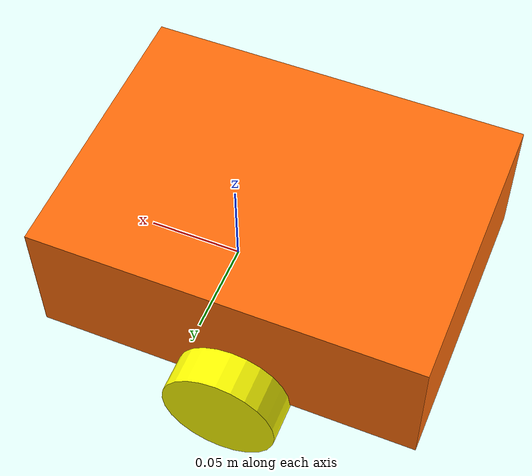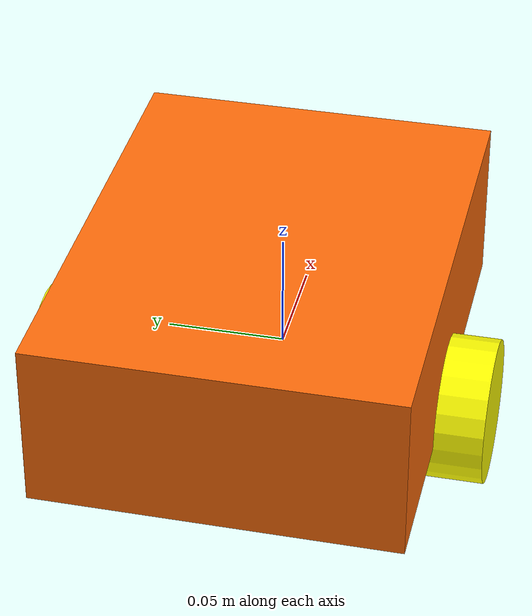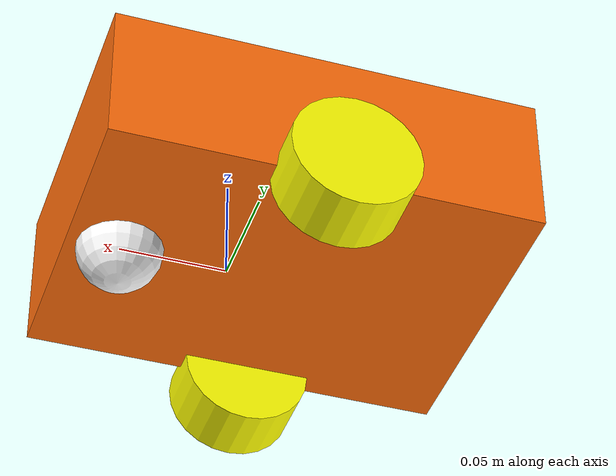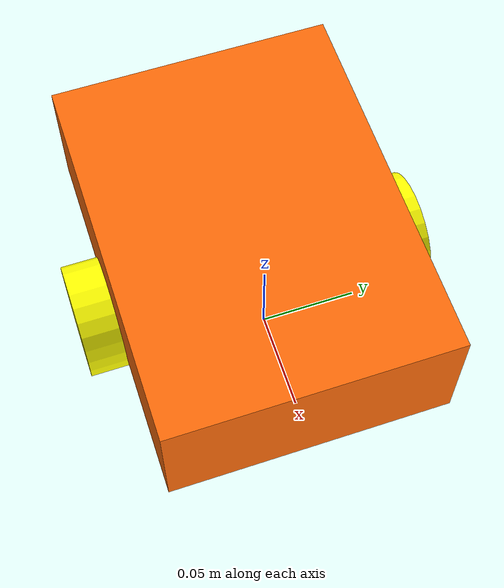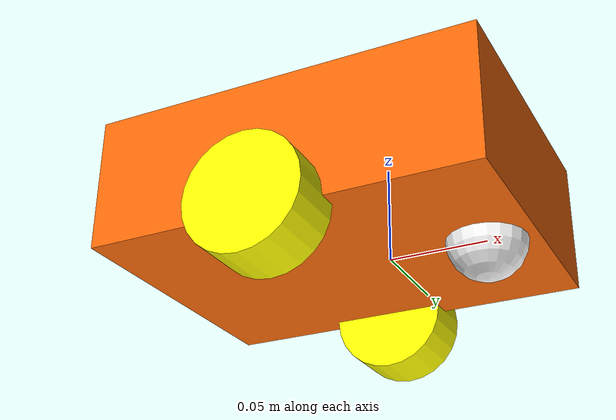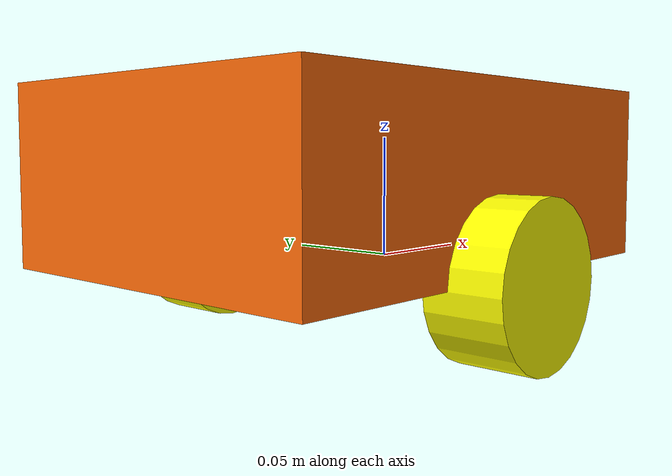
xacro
<?xml version="1.0"?>
<robot xmlns:xacro="http://www.ros.org/wiki/xacro">

<xacro:include filename="inertial_macros.xacro" />

    <!-- COLORS -->

   <material name="white">
    <color rgba="1 1 1 1"/>
</material>

<material name="orange">
     <color rgba="${255/255} ${108/255} ${10/255} 1.0"/>
</material>

<material name="blue">
    <color rgba="0.2 0.2 1 1"/>
</material>

<material name="black">
    <color rgba="0 0 0 1"/>
</material>

<material name="red">
    <color rgba="1 0 0 1"/>
</material>

  <material name="yellow">
      <color rgba="1 1 0 1"/>
    </material>

<!-- BASE LINK -->

<link name="base_link">
</link>

<!-- CHASSIS -->

<joint name="chassis_joint" type="fixed">
    <parent link="base_link"/>
    <child link="chassis"/>
    <origin xyz="-0.1 0 0"/>
</joint>

<link name="chassis">
    <visual>
        <origin xyz="0.075 0 0.035" rpy="0 0 0"/>
        <geometry>
            <box size="0.2 0.15 0.07"/>
        </geometry>
        <material name="orange"/>
    </visual>
    <collision>
         <origin xyz="0.15 0 0.075" rpy="0 0 0"/>
        <geometry>
            <box size="0.2 0.15 0.07"/>
        </geometry>
        <xacro:inertial_box mass="0.5" x="0.2" y="0.15" z="0.07">
        <origin xyz="0.2 0 0.07" rpy="0 0 0"/>
    </xacro:inertial_box>
    </collision>

</link>

<gazebo reference="chassis">
    <material>Gazebo/White</material>
</gazebo>

<!-- LEFT WHEEL -->

<joint name="left_wheel_joint" type="continuous">
    <parent link="chassis"/>
    <child link="left_wheel"/>
    <origin xyz="0.07 0.08 0" rpy="-${pi/2} 0 0"/>
    <axis xyz="0 0 1"/>
</joint>

<link name="left_wheel">
    <visual>
        <geometry>
            <cylinder length="0.03" radius="0.03" />
        </geometry>
        <material name="yellow"/>
    </visual>
    <collision>
         <geometry>
            <cylinder length="0.03" radius="0.03" />
        </geometry>
    </collision>
    <xacro:inertial_cylinder mass="0.1" length="0.03" radius="0.03">
        <origin xyz="0 0 0" rpy="0 0 0"/>
    </xacro:inertial_cylinder>
</link>

<gazebo reference="left_wheel">
    <material>Gazebo/blue</material>
</gazebo>

<!-- RIGHT WHEEL -->

<joint name="right_wheel_joint" type="continuous">
    <parent link="chassis"/>
    <child link="right_wheel"/>
    <origin xyz="0.07 -0.08 0" rpy="${pi/2} 0 0"/>
    <axis xyz="0 0 -1"/>
</joint>

<link name="right_wheel">
    <visual>
        <geometry>
            <cylinder length="0.03" radius="0.03" />
        </geometry>
        <material name="yellow"/>
    </visual>
    <collision>
        <geometry>
            <cylinder length="0.03" radius="0.03" />
        </geometry>
    </collision>
    <xacro:inertial_cylinder mass="0.1" length="0.03" radius="0.03">
        <origin xyz="0 0 0" rpy="0 0 0"/>
    </xacro:inertial_cylinder>
</link>

<gazebo reference="right_wheel">
    <material>Gazebo/blue</material>
</gazebo>

<!-- CASTER WHEEL -->

<joint name="caster_wheel_joint" type="fixed">
    <parent link="chassis"/>
    <child link="caster_wheel"/>
    <origin xyz="0.15 0 0" rpy="0 0 0"/>
</joint>

<link name="caster_wheel">
    <visual>
        <geometry>
            <sphere radius="0.02" />
        </geometry>
        <material name="white"/>
    </visual>
    <collision>
        <geometry>
            <sphere radius="0.02" />
        </geometry>
    </collision>
    <xacro:inertial_sphere mass="0.1" radius="0.02">
        <origin xyz="0 0 0" rpy="0 0 0"/>
    </xacro:inertial_sphere>
</link>

<gazebo reference="caster_wheel">
    <material>Gazebo/black</material>
    <mu1 value="0.001"/>
    <mu2 value="0.001"/>
</gazebo>

</robot>
